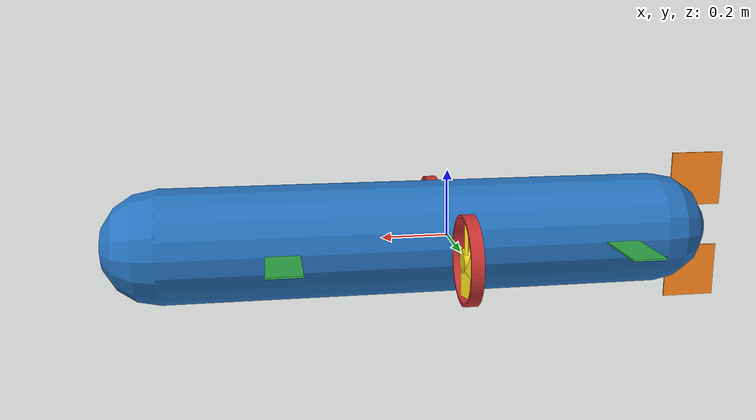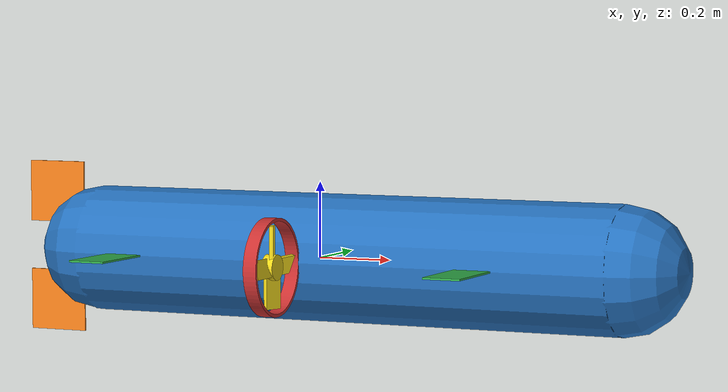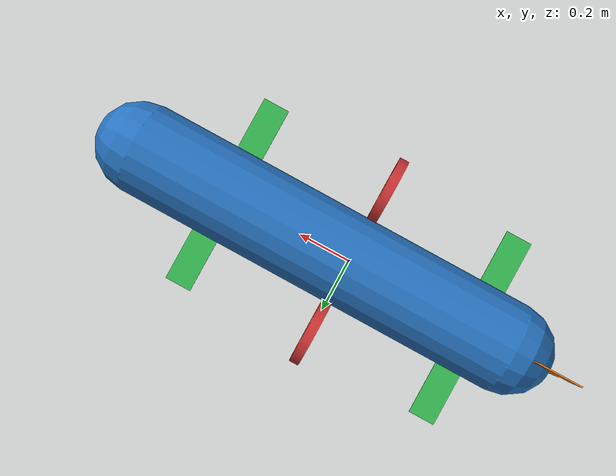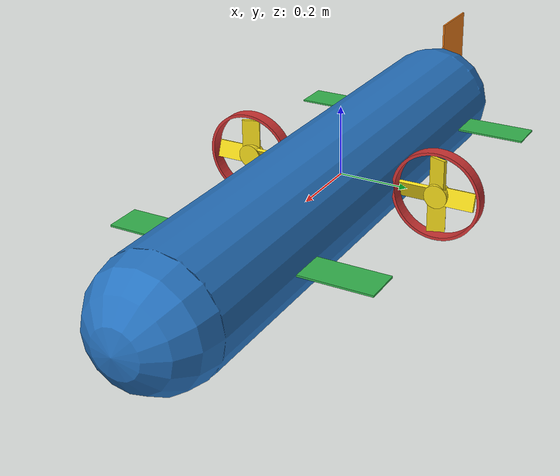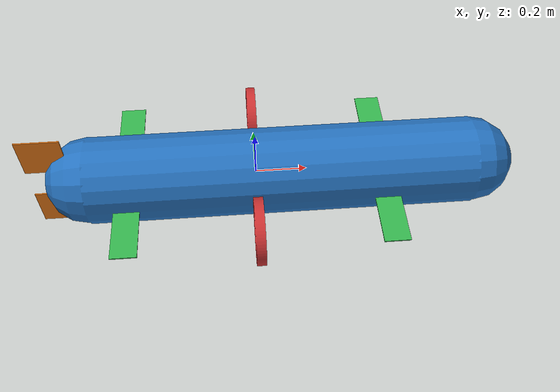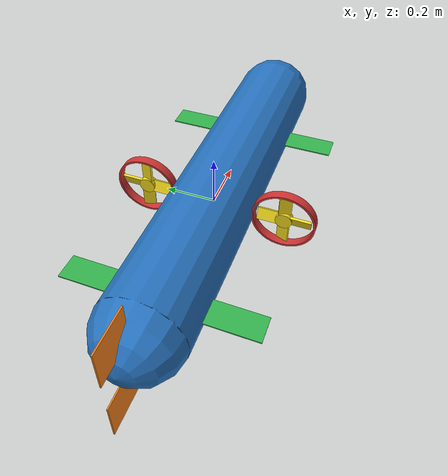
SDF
<?xml version="1.0" ?>
<sdf version="1.6">
  <model name="submarine">
    <pose>0 0 0 0 0 0</pose>

    <!-- ===== КОРПУС ===== -->
    <link name="body">
      <pose>0.1 0 0 0 1.5707963267948966 0</pose>
      <inertial>
        <pose>0.2 0 0 0 0 0</pose>
        <mass>122.7</mass>
        <inertia>
          <ixx>18.64</ixx><iyy>18.33</iyy><izz>18.33</izz>
          <ixy>0</ixy><ixz>0</ixz><iyz>0</iyz>
        </inertia>
        <fluid_added_mass>
          <xx>115.8</xx><yy>116.0</yy><zz>116.0</zz>
          <pp>0.7</pp><qq>3.7</qq><rr>3.7</rr>
        </fluid_added_mass>
      </inertial>
      <visual name="body_visual">
        <geometry><capsule><radius>0.17</radius><length>1.5</length></capsule></geometry>
        <material><ambient>0.15 0.45 0.75 1</ambient><diffuse>0.15 0.45 0.75 1</diffuse><specular>0.15 0.45 0.75 1</specular></material>
      </visual>
      <collision name="body_collision">
        <geometry><cylinder><radius>0.17</radius><length>1.5</length></cylinder></geometry>
      </collision>

      <visual name="le"><pose>0 0.29 -0.12 0 0 0</pose><geometry>

        <mesh>
          <!-- Указываем абсолютный путь к вашему файлу -->
          <uri>file:///home/golfe/auv/src/my_auv_description/models/meshes/bubl.stl</uri>
          <!-- Масштаб модели (если она сделана в миллиметрах, укажите 0.001 0.001 0.001) -->
          <scale>0.0082 0.0082 0.012</scale>
        </mesh>
        </geometry><material><ambient>0.80 0.20 0.20 1</ambient><diffuse>0.80 0.20 0.20 1</diffuse><specular>0.80 0.20 0.20 1</specular></material>
      </visual>

    <visual name="ri"><pose>0 -0.29 -0.12 0 0 0</pose><geometry>

      <mesh>
        <!-- Указываем абсолютный путь к вашему файлу -->
        <uri>file:///home/golfe/auv/src/my_auv_description/models/meshes/bubl.stl</uri>
        <!-- Масштаб модели (если она сделана в миллиметрах, укажите 0.001 0.001 0.001) -->
        <scale>0.0082 0.0082 0.012</scale>
      </mesh>
    </geometry><material><ambient>0.80 0.20 0.20 1</ambient><diffuse>0.80 0.20 0.20 1</diffuse><specular>0.80 0.20 0.20 1</specular></material></visual>

      <sensor name="imu_sensor" type="imu">
        <always_on>1</always_on><update_rate>100</update_rate>
        <topic>/model/submarine/imu</topic>
      </sensor>
      <sensor name="pressure_sensor" type="air_pressure">
        <always_on>1</always_on><update_rate>50</update_rate>
        <topic>/sub_press</topic>
      </sensor>

      <visual name="sonar_marker">
        <pose>0 0 0.75 0 0 0</pose>
        <geometry><sphere><radius>0.06</radius></sphere></geometry>
        <material><ambient>1.0 0.1 0.8 1</ambient><diffuse>1.0 0.1 0.8 1</diffuse><specular>1.0 0.1 0.8 1</specular></material>
      </visual>

      <!-- ===== МАГНИТОМЕТР (абсолютный курс) ===== -->
      <sensor name="mag_sensor" type="magnetometer">
        <always_on>1</always_on><update_rate>50</update_rate>
        <topic>/model/submarine/magnetometer</topic>
      </sensor>
      <!-- ===== АЛЬТИМЕТР: эхолот ВНИЗ (высота над дном) ===== -->
      <sensor name="altimeter_sensor" type="gpu_lidar">
        <pose>0.17 0 0 0 0 0</pose>
        <always_on>1</always_on><update_rate>10</update_rate>
        <topic>/model/submarine/altimeter</topic>
        <lidar>
          <scan><horizontal><samples>1</samples><resolution>1</resolution>
            <min_angle>0</min_angle><max_angle>0</max_angle></horizontal></scan>
          <range><min>0.3</min><max>100.0</max><resolution>0.01</resolution></range>
        </lidar>
      </sensor>
      <!-- ===== СОНАР: эхолот ВПЕРЁД (препятствия) ===== -->
      <sensor name="sonar_sensor" type="gpu_lidar">

        <pose>0 0 0.75 0 -1.5707963 0</pose>
        <always_on>1</always_on><update_rate>10</update_rate>
        <topic>/model/submarine/sonar</topic>
        <gz_frame_id>submarine/body/sonar_sensor</gz_frame_id>
        <lidar>
          <scan>
            <horizontal><samples>16</samples><resolution>1</resolution>
              <min_angle>-0.5235987756</min_angle><max_angle>0.5235987756</max_angle></horizontal>
            <vertical><samples>16</samples><resolution>1</resolution>
              <min_angle>-0.5235987756</min_angle><max_angle>0.5235987756</max_angle></vertical>
          </scan>
          <range><min>0.5</min><max>20.0</max><resolution>0.01</resolution></range>
        </lidar>
      </sensor>
    </link>

    <!-- ===== ЛЕВЫЙ ПРОПЕЛЛЕР ===== -->
    <link name="left_propeller">
      <pose>0 0.29 0 0 1.5708 0</pose>
      <inertial>
        <mass>0.101</mass>
        <inertia><ixx>0.0000592</ixx><iyy>0.0000592</iyy><izz>0.000117</izz>
          <ixy>0</ixy><ixz>0</ixz><iyz>0</iyz></inertia>
      </inertial>
      <visual name="lp_cyl"><geometry><cylinder><radius>0.0333</radius><length>0.03</length></cylinder></geometry><material><ambient>0.95 0.85 0.10 1</ambient><diffuse>0.95 0.85 0.10 1</diffuse><specular>0.95 0.85 0.10 1</specular></material></visual>
      <visual name="lp_b1"><pose>0.057 0 0 -0.349066 0 0</pose><geometry><box><size>0.1 0.05 0.01</size></box></geometry><material><ambient>0.95 0.85 0.10 1</ambient><diffuse>0.95 0.85 0.10 1</diffuse><specular>0.95 0.85 0.10 1</specular></material></visual>
      <visual name="lp_b2"><pose>-0.057 0 0 0.349066 0 0</pose><geometry><box><size>0.1 0.05 0.01</size></box></geometry><material><ambient>0.95 0.85 0.10 1</ambient><diffuse>0.95 0.85 0.10 1</diffuse><specular>0.95 0.85 0.10 1</specular></material></visual>
      <visual name="lp_b3"><pose>0 0.057 0 0 -0.349066 0</pose><geometry><box><size>0.05 0.1 0.01</size></box></geometry><material><ambient>0.95 0.85 0.10 1</ambient><diffuse>0.95 0.85 0.10 1</diffuse><specular>0.95 0.85 0.10 1</specular></material></visual>
      <visual name="lp_b4"><pose>0 -0.057 0 0 0.349066 0</pose><geometry><box><size>0.05 0.1 0.01</size></box></geometry><material><ambient>0.95 0.85 0.10 1</ambient><diffuse>0.95 0.85 0.10 1</diffuse><specular>0.95 0.85 0.10 1</specular></material></visual>
      <collision name="lp_c1"><pose>0.057 0 0 -0.349066 0 0</pose><geometry><box><size>0.1 0.05 0.01</size></box></geometry></collision>
      <collision name="lp_c2"><pose>-0.057 0 0 0.349066 0 0</pose><geometry><box><size>0.1 0.05 0.01</size></box></geometry></collision>
      <collision name="lp_c3"><pose>0 0.057 0 0 -0.349066 0</pose><geometry><box><size>0.05 0.1 0.01</size></box></geometry></collision>
      <collision name="lp_c4"><pose>0 -0.057 0 0 0.349066 0</pose><geometry><box><size>0.05 0.1 0.01</size></box></geometry></collision>
    </link>
    <joint name="left_propeller_joint" type="revolute">
      <parent>body</parent><child>left_propeller</child>
      <axis><xyz>1 0 0</xyz><use_parent_model_frame>1</use_parent_model_frame>
        <limit><lower>-1e12</lower><upper>1e12</upper></limit>
        <dynamics><damping>0.5</damping></dynamics>
      </axis>
    </joint>
    <plugin filename="gz-sim-apply-joint-force-system" name="gz::sim::systems::ApplyJointForce">
      <joint_name>left_propeller_joint</joint_name>
    </plugin>
    <plugin filename="gz-sim-lift-drag-system" name="gz::sim::systems::LiftDrag"><air_density>1000</air_density><cla>1.2535816618911175</cla><cla_stall>-1.4326647564469914</cla_stall><cda>0.02</cda><cda_stall>1.4326647564469914</cda_stall><alpha_stall>1.396</alpha_stall><area>0.007677</area><upward>0 -0.7071067811865476 -0.7071067811865475</upward><forward>0 -0.7071067811865475 0.7071067811865476</forward><link_name>left_propeller</link_name><cp>0.05833 0 0</cp></plugin>
    <plugin filename="gz-sim-lift-drag-system" name="gz::sim::systems::LiftDrag"><air_density>1000</air_density><cla>1.2535816618911175</cla><cla_stall>-1.4326647564469914</cla_stall><cda>0.02</cda><cda_stall>1.4326647564469914</cda_stall><alpha_stall>1.396</alpha_stall><area>0.007677</area><upward>-0.7071067811865475 0 -0.7071067811865476</upward><forward>-0.7071067811865476 0 0.7071067811865475</forward><link_name>left_propeller</link_name><cp>0 -0.05833 0</cp></plugin>
    <plugin filename="gz-sim-lift-drag-system" name="gz::sim::systems::LiftDrag"><air_density>1000</air_density><cla>1.2535816618911175</cla><cla_stall>-1.4326647564469914</cla_stall><cda>0.02</cda><cda_stall>1.4326647564469914</cda_stall><alpha_stall>1.396</alpha_stall><area>0.007677</area><upward>0 0.7071067811865475 -0.7071067811865476</upward><forward>0 0.7071067811865476 0.7071067811865475</forward><link_name>left_propeller</link_name><cp>-0.05833 0 0</cp></plugin>
    <plugin filename="gz-sim-lift-drag-system" name="gz::sim::systems::LiftDrag"><air_density>1000</air_density><cla>1.2535816618911175</cla><cla_stall>-1.4326647564469914</cla_stall><cda>0.02</cda><cda_stall>1.4326647564469914</cda_stall><alpha_stall>1.396</alpha_stall><area>0.007677</area><upward>0.7071067811865476 0 -0.7071067811865475</upward><forward>0.7071067811865475 0 0.7071067811865476</forward><link_name>left_propeller</link_name><cp>0 0.05833 0</cp></plugin>

    <!-- ===== ПРАВЫЙ ПРОПЕЛЛЕР ===== -->
    <link name="right_propeller">
      <pose>0 -0.29 0 0 1.5708 0</pose>
      <inertial><mass>0.101</mass><inertia><ixx>0.0000592</ixx><iyy>0.0000592</iyy><izz>0.000117</izz><ixy>0</ixy><ixz>0</ixz><iyz>0</iyz></inertia></inertial>
      <visual name="rp_cyl"><geometry><cylinder><radius>0.0333</radius><length>0.03</length></cylinder></geometry><material><ambient>0.95 0.85 0.10 1</ambient><diffuse>0.95 0.85 0.10 1</diffuse><specular>0.95 0.85 0.10 1</specular></material></visual>
      <visual name="rp_b1"><pose>0.057 0 0 0.349066 0 0</pose><geometry><box><size>0.1 0.05 0.01</size></box></geometry><material><ambient>0.95 0.85 0.10 1</ambient><diffuse>0.95 0.85 0.10 1</diffuse><specular>0.95 0.85 0.10 1</specular></material></visual>
      <visual name="rp_b2"><pose>-0.057 0 0 -0.349066 0 0</pose><geometry><box><size>0.1 0.05 0.01</size></box></geometry><material><ambient>0.95 0.85 0.10 1</ambient><diffuse>0.95 0.85 0.10 1</diffuse><specular>0.95 0.85 0.10 1</specular></material></visual>
      <visual name="rp_b3"><pose>0 0.057 0 0 0.349066 0</pose><geometry><box><size>0.05 0.1 0.01</size></box></geometry><material><ambient>0.95 0.85 0.10 1</ambient><diffuse>0.95 0.85 0.10 1</diffuse><specular>0.95 0.85 0.10 1</specular></material></visual>
      <visual name="rp_b4"><pose>0 -0.057 0 0 -0.349066 0</pose><geometry><box><size>0.05 0.1 0.01</size></box></geometry><material><ambient>0.95 0.85 0.10 1</ambient><diffuse>0.95 0.85 0.10 1</diffuse><specular>0.95 0.85 0.10 1</specular></material></visual>
      <collision name="rp_c1"><pose>0.057 0 0 0.349066 0 0</pose><geometry><box><size>0.1 0.05 0.01</size></box></geometry></collision>
      <collision name="rp_c2"><pose>-0.057 0 0 -0.349066 0 0</pose><geometry><box><size>0.1 0.05 0.01</size></box></geometry></collision>
      <collision name="rp_c3"><pose>0 0.057 0 0 0.349066 0</pose><geometry><box><size>0.05 0.1 0.01</size></box></geometry></collision>
      <collision name="rp_c4"><pose>0 -0.057 0 0 -0.349066 0</pose><geometry><box><size>0.05 0.1 0.01</size></box></geometry></collision>
    </link>
    <joint name="right_propeller_joint" type="revolute">
      <parent>body</parent><child>right_propeller</child>
      <axis><xyz>-1 0 0</xyz><use_parent_model_frame>1</use_parent_model_frame>
        <limit><lower>-1e12</lower><upper>1e12</upper></limit>
        <dynamics><damping>0.5</damping></dynamics>
      </axis>
    </joint>
    <plugin filename="gz-sim-apply-joint-force-system" name="gz::sim::systems::ApplyJointForce"><joint_name>right_propeller_joint</joint_name></plugin>
    <plugin filename="gz-sim-lift-drag-system" name="gz::sim::systems::LiftDrag"><air_density>1000</air_density><cla>1.2535816618911175</cla><cla_stall>-1.4326647564469914</cla_stall><cda>0.02</cda><cda_stall>1.4326647564469914</cda_stall><alpha_stall>1.396</alpha_stall><area>0.007677</area><upward>0 0.7071067811865476 -0.7071067811865475</upward><forward>0 0.7071067811865475 0.7071067811865476</forward><link_name>right_propeller</link_name><cp>0.05833 0 0</cp></plugin>
    <plugin filename="gz-sim-lift-drag-system" name="gz::sim::systems::LiftDrag"><air_density>1000</air_density><cla>1.2535816618911175</cla><cla_stall>-1.4326647564469914</cla_stall><cda>0.02</cda><cda_stall>1.4326647564469914</cda_stall><alpha_stall>1.396</alpha_stall><area>0.007677</area><upward>0.7071067811865475 0 -0.7071067811865476</upward><forward>0.7071067811865476 0 0.7071067811865475</forward><link_name>right_propeller</link_name><cp>0 -0.05833 0</cp></plugin>
    <plugin filename="gz-sim-lift-drag-system" name="gz::sim::systems::LiftDrag"><air_density>1000</air_density><cla>1.2535816618911175</cla><cla_stall>-1.4326647564469914</cla_stall><cda>0.02</cda><cda_stall>1.4326647564469914</cda_stall><alpha_stall>1.396</alpha_stall><area>0.007677</area><upward>0 -0.7071067811865475 -0.7071067811865476</upward><forward>0 -0.7071067811865476 0.7071067811865475</forward><link_name>right_propeller</link_name><cp>-0.05833 0 0</cp></plugin>
    <plugin filename="gz-sim-lift-drag-system" name="gz::sim::systems::LiftDrag"><air_density>1000</air_density><cla>1.2535816618911175</cla><cla_stall>-1.4326647564469914</cla_stall><cda>0.02</cda><cda_stall>1.4326647564469914</cda_stall><alpha_stall>1.396</alpha_stall><area>0.007677</area><upward>-0.7071067811865476 0 -0.7071067811865475</upward><forward>-0.7071067811865475 0 0.7071067811865476</forward><link_name>right_propeller</link_name><cp>0 0.05833 0</cp></plugin>

    <!-- ===== РУЛИ ===== -->

    <!-- Горизонтальный правый руль -->
    <link name="horizontal_rudder_right">
      <pose>-0.5 0.27 0 0 0 0</pose>
      <inertial>
        <mass>0.02315</mass>
        <inertia><ixx>0.00000129</ixx><iyy>0.00000129</iyy><izz>0.00000129</izz>
          <ixy>0</ixy><ixz>0</ixz><iyz>0</iyz></inertia>
      </inertial>
      <visual name="hrr_v">
        <geometry><box><size>0.1 0.2 0.005</size></box></geometry>
        <material><ambient>0.20 0.70 0.30 1</ambient><diffuse>0.20 0.70 0.30 1</diffuse><specular>0.20 0.70 0.30 1</specular></material>
      </visual>
      <collision name="hrr_c">
        <geometry><box><size>0.1 0.2 0.005</size></box></geometry>
      </collision>
    </link>
    <joint name="horizontal_rudder_right_joint" type="revolute">
      <parent>body</parent><child>horizontal_rudder_right</child>
      <axis>
        <xyz>0 1 0</xyz>
        <limit><lower>-0.785</lower><upper>0.785</upper><effort>10</effort><velocity>1.0</velocity></limit>
        <dynamics><damping>10.0</damping></dynamics>
      </axis>
    </joint>
    <plugin filename="gz-sim-joint-position-controller-system" name="gz::sim::systems::JointPositionController">
      <joint_name>horizontal_rudder_right_joint</joint_name>
      <topic>/model/submarine/joint/horizontal_rudder_right/cmd_position</topic>
      <p_gain>10</p_gain>
    </plugin>
    <plugin filename="gz-sim-lift-drag-system" name="gz::sim::systems::LiftDrag">
      <air_density>1000</air_density>
      <link_name>horizontal_rudder_right</link_name>
      <area>0.014</area><cla>2.5</cla><cla_stall>-0.5</cla_stall>
      <cda>0.5</cda><cda_stall>1.5</cda_stall>
      <alpha_stall>1.2</alpha_stall><a0>0</a0>
      <upward>0 0 1</upward><forward>1 0 0</forward>
      <cp>0 0 0</cp>
    </plugin>

    <!-- Горизонтальный левый руль -->
    <link name="horizontal_rudder_left">
      <pose>-0.5 -0.27 0 0 0 0</pose>
      <inertial>
        <mass>0.02315</mass>
        <inertia><ixx>0.00000129</ixx><iyy>0.00000129</iyy><izz>0.00000129</izz>
          <ixy>0</ixy><ixz>0</ixz><iyz>0</iyz></inertia>
      </inertial>
      <visual name="hrl_v">
        <geometry><box><size>0.1 0.2 0.005</size></box></geometry>
        <material><ambient>0.20 0.70 0.30 1</ambient><diffuse>0.20 0.70 0.30 1</diffuse><specular>0.20 0.70 0.30 1</specular></material>
      </visual>
      <collision name="hrl_c">
        <geometry><box><size>0.1 0.2 0.005</size></box></geometry>
      </collision>
    </link>
    <joint name="horizontal_rudder_left_joint" type="revolute">
      <parent>body</parent><child>horizontal_rudder_left</child>
      <axis>
        <xyz>0 1 0</xyz>
        <limit><lower>-0.785</lower><upper>0.785</upper><effort>10</effort><velocity>1.0</velocity></limit>
        <dynamics><damping>10.0</damping></dynamics>
      </axis>
    </joint>
    <plugin filename="gz-sim-joint-position-controller-system" name="gz::sim::systems::JointPositionController">
      <joint_name>horizontal_rudder_left_joint</joint_name>
      <topic>/model/submarine/joint/horizontal_rudder_left/cmd_position</topic>
      <p_gain>10</p_gain>
    </plugin>
    <plugin filename="gz-sim-lift-drag-system" name="gz::sim::systems::LiftDrag">
      <air_density>1000</air_density>
      <link_name>horizontal_rudder_left</link_name>
      <area>0.014</area><cla>2.5</cla><cla_stall>-0.5</cla_stall>
      <cda>0.5</cda><cda_stall>1.5</cda_stall>
      <alpha_stall>1.2</alpha_stall><a0>0</a0>
      <upward>0 0 1</upward><forward>1 0 0</forward>
      <cp>0 0 0</cp>
    </plugin>

    <!-- Вертикальный руль -->
    <link name="vertical_rudder">
      <pose>-0.8 0 -0.15 1.5708 1.5708 0</pose>
      <inertial>
        <mass>0.02315</mass>
        <inertia><ixx>0.00000129</ixx><iyy>0.00000129</iyy><izz>0.00000129</izz>
          <ixy>0</ixy><ixz>0</ixz><iyz>0</iyz></inertia>
      </inertial>
      <visual name="vr_v">
        <geometry><box><size>0.1666667 0.1666667 0.005</size></box></geometry>
        <material><ambient>0.95 0.50 0.10 1</ambient><diffuse>0.95 0.50 0.10 1</diffuse><specular>0.95 0.50 0.10 1</specular></material>
      </visual>
      <collision name="vr_c">
        <geometry><box><size>0.0333333 0.0666667 0.005</size></box></geometry>
      </collision>
    </link>
    <joint name="vertical_rudder_joint" type="revolute">
      <parent>body</parent><child>vertical_rudder</child>
      <pose>0 0.066 0 0 0 0 </pose>
      <axis>
        <xyz>1 0 0</xyz>
        <limit><lower>-0.785</lower><upper>0.785</upper><effort>10</effort><velocity>1.0</velocity></limit>
        <dynamics><damping>3.0</damping></dynamics>
      </axis>
    </joint>
    <plugin filename="gz-sim-joint-position-controller-system" name="gz::sim::systems::JointPositionController">
      <joint_name>vertical_rudder_joint</joint_name>
      <topic>/model/submarine/joint/vertical_rudder/cmd_position</topic>
      <p_gain>10</p_gain>
    </plugin>
    <plugin filename="gz-sim-lift-drag-system" name="gz::sim::systems::LiftDrag">
      <air_density>1000</air_density>
      <link_name>vertical_rudder</link_name>
      <area>0.028</area><cla>2.5</cla><cla_stall>-0.5</cla_stall>
      <cda>0.02</cda><cda_stall>1.0</cda_stall>
      <alpha_stall>0.2</alpha_stall><a0>0</a0>
      <upward>0 0 1</upward><forward>0 1 0</forward>
      <cp>0 0 0</cp>
    </plugin>

    <!-- Вертикальный руль ВЕРХНИЙ (кормовой, для стабилизации крена) -->
    <link name="vertical_rudder_top">
      <pose>-0.8 0 0.15 1.5708 1.5708 0</pose>
      <inertial>
        <mass>0.02315</mass>
        <inertia><ixx>0.00000129</ixx><iyy>0.00000129</iyy><izz>0.00000129</izz>
          <ixy>0</ixy><ixz>0</ixz><iyz>0</iyz></inertia>
      </inertial>
      <visual name="vrt_v">
        <geometry><box><size>0.1666667 0.1666667 0.005</size></box></geometry>
        <material><ambient>0.95 0.50 0.10 1</ambient><diffuse>0.95 0.50 0.10 1</diffuse><specular>0.95 0.50 0.10 1</specular></material>
      </visual>
      <collision name="vrt_c">
        <geometry><box><size>0.0333333 0.0666667 0.005</size></box></geometry>
      </collision>
    </link>
    <joint name="vertical_rudder_top_joint" type="revolute">
      <parent>body</parent><child>vertical_rudder_top</child>
      <pose>0 0.066 0 0 0 0 </pose>
      <axis>
        <xyz>1 0 0</xyz>
        <limit><lower>-0.785</lower><upper>0.785</upper><effort>10</effort><velocity>1.0</velocity></limit>
        <dynamics><damping>3.0</damping></dynamics>
      </axis>
    </joint>
    <plugin filename="gz-sim-joint-position-controller-system" name="gz::sim::systems::JointPositionController">
      <joint_name>vertical_rudder_top_joint</joint_name>
      <topic>/model/submarine/joint/vertical_rudder_top/cmd_position</topic>
      <p_gain>10</p_gain>
    </plugin>
    <plugin filename="gz-sim-lift-drag-system" name="gz::sim::systems::LiftDrag">
      <air_density>1000</air_density>
      <link_name>vertical_rudder_top</link_name>
      <area>0.028</area><cla>2.5</cla><cla_stall>-0.5</cla_stall>
      <cda>0.02</cda><cda_stall>1.0</cda_stall>
      <alpha_stall>0.2</alpha_stall><a0>0</a0>
      <upward>0 0 1</upward><forward>0 1 0</forward>
      <cp>0 0 0</cp>
    </plugin>

    <!-- ===== НОСОВЫЕ ГОРИЗОНТАЛЬНЫЕ РУЛИ (зеркально кормовых) ===== -->

    <!-- Носовой правый руль -->
    <link name="horizontal_rudder_front_right">
      <pose>0.5 -0.27 0 0 0 0</pose>
      <inertial>
        <mass>0.02315</mass>
        <inertia><ixx>0.00000129</ixx><iyy>0.00000129</iyy><izz>0.00000129</izz>
          <ixy>0</ixy><ixz>0</ixz><iyz>0</iyz></inertia>
      </inertial>
      <visual name="hfrr_v">
        <geometry><box><size>0.1 0.2 0.005</size></box></geometry>
        <material><ambient>0.20 0.70 0.30 1</ambient><diffuse>0.20 0.70 0.30 1</diffuse><specular>0.20 0.70 0.30 1</specular></material>
      </visual>
      <collision name="hfrr_c">
        <geometry><box><size>0.1 0.2 0.005</size></box></geometry>
      </collision>
    </link>
    <joint name="horizontal_rudder_front_right_joint" type="revolute">
      <parent>body</parent><child>horizontal_rudder_front_right</child>
      <axis>
        <xyz>0 -1 0</xyz>
        <limit><lower>-0.785</lower><upper>0.785</upper><effort>10</effort><velocity>1.0</velocity></limit>
        <dynamics><damping>10.0</damping></dynamics>
      </axis>
    </joint>
    <plugin filename="gz-sim-joint-position-controller-system" name="gz::sim::systems::JointPositionController">
      <joint_name>horizontal_rudder_front_right_joint</joint_name>
      <topic>/model/submarine/joint/horizontal_rudder_front_right/cmd_position</topic>
      <p_gain>10</p_gain>
    </plugin>
    <plugin filename="gz-sim-lift-drag-system" name="gz::sim::systems::LiftDrag">
      <air_density>1000</air_density>
      <link_name>horizontal_rudder_front_right</link_name>
      <area>0.014</area><cla>2.5</cla><cla_stall>-0.5</cla_stall>
      <cda>0.5</cda><cda_stall>1.5</cda_stall>
      <alpha_stall>1.2</alpha_stall><a0>0</a0>
      <upward>0 0 1</upward><forward>1 0 0</forward>
      <cp>0 0 0</cp>
    </plugin>

    <!-- Носовой левый руль -->
    <link name="horizontal_rudder_front_left">
      <pose>0.5 0.27 0 0 0 0</pose>
      <inertial>
        <mass>0.02315</mass>
        <inertia><ixx>0.00000129</ixx><iyy>0.00000129</iyy><izz>0.00000129</izz>
          <ixy>0</ixy><ixz>0</ixz><iyz>0</iyz></inertia>
      </inertial>
      <visual name="hfrl_v">
        <geometry><box><size>0.1 0.2 0.005</size></box></geometry>
        <material><ambient>0.20 0.70 0.30 1</ambient><diffuse>0.20 0.70 0.30 1</diffuse><specular>0.20 0.70 0.30 1</specular></material>
      </visual>
      <collision name="hfrl_c">
        <geometry><box><size>0.1 0.2 0.005</size></box></geometry>
      </collision>
    </link>
    <joint name="horizontal_rudder_front_left_joint" type="revolute">
      <parent>body</parent><child>horizontal_rudder_front_left</child>
      <axis>
        <xyz>0 -1 0</xyz>
        <limit><lower>-0.785</lower><upper>0.785</upper><effort>10</effort><velocity>1.0</velocity></limit>
        <dynamics><damping>10.0</damping></dynamics>
      </axis>
    </joint>
    <plugin filename="gz-sim-joint-position-controller-system" name="gz::sim::systems::JointPositionController">
      <joint_name>horizontal_rudder_front_left_joint</joint_name>
      <topic>/model/submarine/joint/horizontal_rudder_front_left/cmd_position</topic>
      <p_gain>10</p_gain>
    </plugin>
    <plugin filename="gz-sim-lift-drag-system" name="gz::sim::systems::LiftDrag">
      <air_density>1000</air_density>
      <link_name>horizontal_rudder_front_left</link_name>
      <area>0.014</area><cla>2.5</cla><cla_stall>-0.5</cla_stall>
      <cda>0.5</cda><cda_stall>1.5</cda_stall>
      <alpha_stall>1.2</alpha_stall><a0>0</a0>
      <upward>0 0 1</upward><forward>1 0 0</forward>
      <cp>0 0 0</cp>
    </plugin>

    <!-- ===== БАЛЛАСТЫ ===== -->
    <link name="ballast_1"><pose>0.6625 0 -0.2 0 0 0</pose><inertial><mass>4.655</mass><inertia><ixx>0.0001</ixx><iyy>0.0001</iyy><izz>0.0001</izz></inertia></inertial><collision name="b1_c"><geometry><box><size>0.375 0.05 0.05</size></box></geometry></collision></link>
    <joint name="ballast_1_joint" type="fixed"><parent>body</parent><child>ballast_1</child></joint>
    <link name="ballast_2"><pose>0.2875 0 -0.2 0 0 0</pose><inertial><mass>5.425</mass><inertia><ixx>0.0001</ixx><iyy>0.0001</iyy><izz>0.0001</izz></inertia></inertial><collision name="b2_c"><geometry><box><size>0.375 0.05 0.05</size></box></geometry></collision></link>
    <joint name="ballast_2_joint" type="fixed"><parent>body</parent><child>ballast_2</child></joint>
    <link name="ballast_3"><pose>-0.0875 0 -0.2 0 0 0</pose><inertial><mass>3.425</mass><inertia><ixx>0.0001</ixx><iyy>0.0001</iyy><izz>0.0001</izz></inertia></inertial><collision name="b3_c"><geometry><box><size>0.375 0.05 0.05</size></box></geometry></collision></link>
    <joint name="ballast_3_joint" type="fixed"><parent>body</parent><child>ballast_3</child></joint>
    <link name="ballast_4"><pose>-0.4625 0 -0.2 0 0 0</pose><inertial><mass>3.775</mass><inertia><ixx>0.0001</ixx><iyy>0.0001</iyy><izz>0.0001</izz></inertia></inertial><collision name="b4_c"><geometry><box><size>0.375 0.05 0.05</size></box></geometry></collision></link>
    <joint name="ballast_4_joint" type="fixed"><parent>body</parent><child>ballast_4</child></joint>

    <plugin filename="gz-sim-buoyancy-engine-system" name="gz::sim::systems::BuoyancyEngine"><link_name>ballast_1</link_name><min_volume>0.0</min_volume><max_volume>0.015</max_volume><neutral_volume>0.0075</neutral_volume><default_volume>0.0075</default_volume><max_inflation_rate>0.001</max_inflation_rate><fluid_density>1000</fluid_density><namespace>sub_ballast_1</namespace></plugin>
    <plugin filename="gz-sim-buoyancy-engine-system" name="gz::sim::systems::BuoyancyEngine"><link_name>ballast_2</link_name><min_volume>0.0</min_volume><max_volume>0.015</max_volume><neutral_volume>0.0075</neutral_volume><default_volume>0.0075</default_volume><max_inflation_rate>0.001</max_inflation_rate><fluid_density>1000</fluid_density><namespace>sub_ballast_2</namespace></plugin>
    <plugin filename="gz-sim-buoyancy-engine-system" name="gz::sim::systems::BuoyancyEngine"><link_name>ballast_3</link_name><min_volume>0.0</min_volume><max_volume>0.015</max_volume><neutral_volume>0.0075</neutral_volume><default_volume>0.0075</default_volume><max_inflation_rate>0.001</max_inflation_rate><fluid_density>1000</fluid_density><namespace>sub_ballast_3</namespace></plugin>
    <plugin filename="gz-sim-buoyancy-engine-system" name="gz::sim::systems::BuoyancyEngine"><link_name>ballast_4</link_name><min_volume>0.0</min_volume><max_volume>0.015</max_volume><neutral_volume>0.0075</neutral_volume><default_volume>0.0075</default_volume><max_inflation_rate>0.001</max_inflation_rate><fluid_density>1000</fluid_density><namespace>sub_ballast_4</namespace></plugin>

    <!-- ===== СИСТЕМНЫЕ ПЛАГИНЫ ===== -->
    <plugin filename="gz-sim-odometry-publisher-system" name="gz::sim::systems::OdometryPublisher">
      <odom_frame>world</odom_frame>
      <robot_base_frame>submarine/body</robot_base_frame>
      <odom_topic>/model/submarine/odometry</odom_topic>
      <tf_topic>/model/submarine/tf</tf_topic>
      <dimensions>3</dimensions>
      <odom_publish_frequency>50</odom_publish_frequency>
    </plugin>

    <plugin filename="gz-sim-hydrodynamics-system" name="gz::sim::systems::Hydrodynamics">
      <link_name>body</link_name>
      <xU>-4.0</xU><xUabsU>-44.0</xUabsU>
      <yV>-15.0</yV><yVabsV>-250.0</yVabsV>
      <zW>-15.0</zW><zWabsW>-250.0</zWabsW>
      <kP>-5.0</kP><kPabsP>-100.0</kPabsP>
      <mQ>-5.0</mQ><mQabsQ>-100.0</mQabsQ>
      <nR>-5.0</nR><nRabsR>-100.0</nRabsR>
    </plugin>

    <plugin filename="gz-sim-hydrodynamics-system" name="gz::sim::systems::Hydrodynamics">
      <link_name>horizontal_rudder_right</link_name>
      <xU>-0.2</xU><xUabsU>-0.5</xUabsU>
      <yV>-0.4</yV><yVabsV>-1.0</yVabsV>
      <zW>-0.4</zW><zWabsW>-1.0</zWabsW>
      <kP>-0.02</kP><kPabsP>-0.05</kPabsP>
      <mQ>-0.02</mQ><mQabsQ>-0.05</mQabsQ>
      <zW>-0.4</zW><zWabsW>-1.0</zWabsW>
      <kP>-0.02</kP><kPabsP>-0.05</kPabsP>
      <mQ>-0.02</mQ><mQabsQ>-0.05</mQabsQ>
      <nR>-0.02</nR><nRabsR>-0.05</nRabsR>
    </plugin>

    <plugin filename="gz-sim-hydrodynamics-system" name="gz::sim::systems::Hydrodynamics">
      <link_name>vertical_rudder</link_name>
      <xU>-0.2</xU><xUabsU>-0.5</xUabsU>
      <yV>-0.4</yV><yVabsV>-1.0</yVabsV>
      <zW>-0.4</zW><zWabsW>-1.0</zWabsW>
      <kP>-0.02</kP><kPabsP>-0.05</kPabsP>
      <mQ>-0.02</mQ><mQabsQ>-0.05</mQabsQ>
      <nR>-0.02</nR><nRabsR>-0.05</nRabsR>
    </plugin>

    <plugin filename="gz-sim-hydrodynamics-system" name="gz::sim::systems::Hydrodynamics">
      <link_name>vertical_rudder_top</link_name>
      <xU>-0.2</xU><xUabsU>-0.5</xUabsU>
      <yV>-0.4</yV><yVabsV>-1.0</yVabsV>
      <zW>-0.4</zW><zWabsW>-1.0</zWabsW>
      <kP>-0.02</kP><kPabsP>-0.05</kPabsP>
      <mQ>-0.02</mQ><mQabsQ>-0.05</mQabsQ>
      <nR>-0.02</nR><nRabsR>-0.05</nRabsR>
    </plugin>

  </model>
</sdf>
